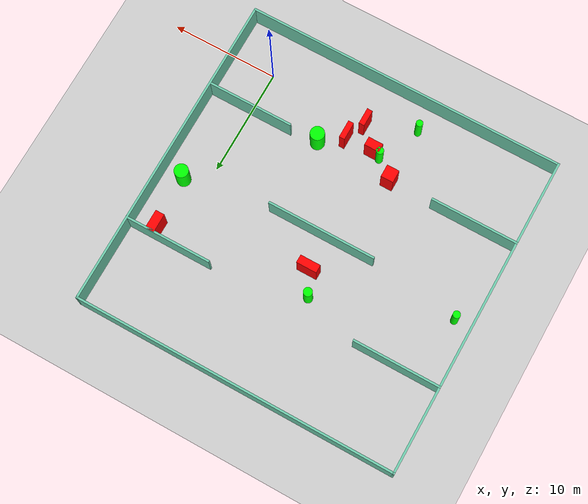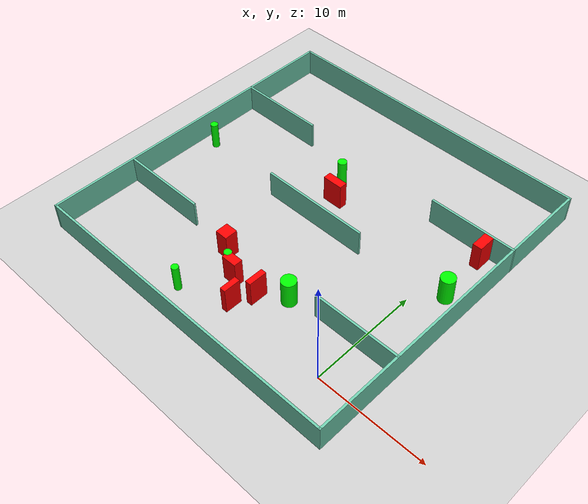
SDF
<sdf version="1.7">
 <world name="default">
  <light name="sun" type="directional">
   <pose>0 0 10 0 -0 0</pose>
   <diffuse>0.8 0.8 0.8 1</diffuse>
   <specular>0.2 0.2 0.2 1</specular>
   <attenuation>
    <range>1000</range>
    <constant>0.9</constant>
    <linear>0.01</linear>
    <quadratic>0.001</quadratic>
   </attenuation>
   <direction>-0.5 0.1 -0.9</direction>
   <spot><inner_angle>0</inner_angle><outer_angle>0</outer_angle><falloff>0</falloff></spot>
  </light>
  <model name="ground_plane">
   <static>1</static>
   <link name="link">
    <collision name="collision">
     <geometry><plane><normal>0 0 1</normal><size>100 100</size></plane></geometry>
     <surface>
      <contact><collide_bitmask>65535</collide_bitmask></contact>
      <friction><ode><mu>100</mu><mu2>50</mu2></ode></friction>
     </surface>
    </collision>
    <visual name="visual">
     <cast_shadows>0</cast_shadows>
     <geometry><plane><normal>0 0 1</normal><size>100 100</size></plane></geometry>
     <material>
      <script><uri>file://media/materials/scripts/gazebo.material</uri><name>Gazebo/Grey</name></script>
     </material>
    </visual>
   </link>
  </model>
  <gravity>0 0 -9.8</gravity>
  <magnetic_field>6e-06 2.3e-05 -4.2e-05</magnetic_field>
  <atmosphere type="adiabatic"/>
  <physics type="ode">
   <max_step_size>0.001</max_step_size>
   <real_time_factor>1</real_time_factor>
   <real_time_update_rate>1000</real_time_update_rate>
  </physics>
  <scene><ambient>0.4 0.4 0.4 1</ambient><background>0.7 0.7 0.7 1</background><shadows>1</shadows></scene>
  <spherical_coordinates>
   <surface_model>EARTH_WGS84</surface_model>
   <latitude_deg>0</latitude_deg>
   <longitude_deg>0</longitude_deg>
   <elevation>0</elevation>
   <heading_deg>0</heading_deg>
  </spherical_coordinates>
  <model name="my_base_walls">
   <link name="Wall_10">
    <collision name="Wall_10_Collision">
     <geometry><box><size>8.2 0.2 2.5</size></box></geometry>
     <pose>0 0 1.25 0 -0 0</pose>
    </collision>
    <visual name="Wall_10_Visual">
     <pose>0 0 1.25 0 -0 0</pose>
     <geometry><box><size>8.2 0.2 2.5</size></box></geometry>
     <material>
      <script><uri>file://media/materials/scripts/gazebo.material</uri><name>Gazebo/Grey</name></script>
      <ambient>0.435294 0.796078 0.67451 1</ambient>
     </material>
     <meta><layer>0</layer></meta>
    </visual>
    <pose>-11 -7 0 0 -0 0</pose>
   </link>
   <link name="Wall_12">
    <collision name="Wall_12_Collision">
     <geometry><box><size>8.2 0.2 2.5</size></box></geometry>
     <pose>0 0 1.25 0 -0 0</pose>
    </collision>
    <visual name="Wall_12_Visual">
     <pose>0 0 1.25 0 -0 0</pose>
     <geometry><box><size>8.2 0.2 2.5</size></box></geometry>
     <material>
      <script><uri>file://media/materials/scripts/gazebo.material</uri><name>Gazebo/Grey</name></script>
      <ambient>0.435294 0.796078 0.67451 1</ambient>
     </material>
     <meta><layer>0</layer></meta>
    </visual>
    <pose>-11 7 0 0 -0 0</pose>
   </link>
   <link name="Wall_14">
    <collision name="Wall_14_Collision">
     <geometry><box><size>8.2 0.2 2.5</size></box></geometry>
     <pose>0 0 1.25 0 -0 0</pose>
    </collision>
    <visual name="Wall_14_Visual">
     <pose>0 0 1.25 0 -0 0</pose>
     <geometry><box><size>8.2 0.2 2.5</size></box></geometry>
     <material>
      <script><uri>file://media/materials/scripts/gazebo.material</uri><name>Gazebo/Grey</name></script>
      <ambient>0.435294 0.796078 0.67451 1</ambient>
     </material>
     <meta><layer>0</layer></meta>
    </visual>
    <pose>11 7 0 0 -0 3.14159</pose>
   </link>
   <link name="Wall_16">
    <collision name="Wall_16_Collision">
     <geometry><box><size>10.2 0.2 2.5</size></box></geometry>
     <pose>0 0 1.25 0 -0 0</pose>
    </collision>
    <visual name="Wall_16_Visual">
     <pose>0 0 1.25 0 -0 0</pose>
     <geometry><box><size>10.2 0.2 2.5</size></box></geometry>
     <material>
      <script><uri>file://media/materials/scripts/gazebo.material</uri><name>Gazebo/Grey</name></script>
      <ambient>0.435294 0.796078 0.67451 1</ambient>
     </material>
     <meta><layer>0</layer></meta>
    </visual>
    <pose>0 0 0 0 -0 3.14159</pose>
   </link>
   <link name="Wall_2">
    <collision name="Wall_2_Collision">
     <geometry><box><size>30.2 0.2 2.5</size></box></geometry>
     <pose>0 0 1.25 0 -0 0</pose>
    </collision>
    <visual name="Wall_2_Visual">
     <pose>0 0 1.25 0 -0 0</pose>
     <geometry><box><size>30.2 0.2 2.5</size></box></geometry>
     <material>
      <script><uri>file://media/materials/scripts/gazebo.material</uri><name>Gazebo/Grey</name></script>
      <ambient>0.435294 0.796078 0.67451 1</ambient>
     </material>
     <meta><layer>0</layer></meta>
    </visual>
    <pose>0 -15 0 0 -0 3.14159</pose>
   </link>
   <link name="Wall_3">
    <collision name="Wall_3_Collision">
     <geometry><box><size>30.2 0.2 2.5</size></box></geometry>
     <pose>0 0 1.25 0 -0 0</pose>
    </collision>
    <visual name="Wall_3_Visual">
     <pose>0 0 1.25 0 -0 0</pose>
     <geometry><box><size>30.2 0.2 2.5</size></box></geometry>
     <material>
      <script><uri>file://media/materials/scripts/gazebo.material</uri><name>Gazebo/Grey</name></script>
      <ambient>0.435294 0.796078 0.67451 1</ambient>
     </material>
     <meta><layer>0</layer></meta>
    </visual>
    <pose>-15 0 0 0 -0 1.5708</pose>
   </link>
   <link name="Wall_4">
    <collision name="Wall_4_Collision">
     <geometry><box><size>30.2 0.2 2.5</size></box></geometry>
     <pose>0 0 1.25 0 -0 0</pose>
    </collision>
    <visual name="Wall_4_Visual">
     <pose>0 0 1.25 0 -0 0</pose>
     <geometry><box><size>30.2 0.2 2.5</size></box></geometry>
     <material>
      <script><uri>file://media/materials/scripts/gazebo.material</uri><name>Gazebo/Grey</name></script>
      <ambient>0.435294 0.796078 0.67451 1</ambient>
     </material>
     <meta><layer>0</layer></meta>
    </visual>
    <pose>0 15 0 0 -0 0</pose>
   </link>
   <link name="Wall_6">
    <collision name="Wall_6_Collision">
     <geometry><box><size>30.2 0.2 2.5</size></box></geometry>
     <pose>0 0 1.25 0 -0 0</pose>
    </collision>
    <visual name="Wall_6_Visual">
     <pose>0 0 1.25 0 -0 0</pose>
     <geometry><box><size>30.2 0.2 2.5</size></box></geometry>
     <material>
      <script><uri>file://media/materials/scripts/gazebo.material</uri><name>Gazebo/Grey</name></script>
      <ambient>0.435294 0.796078 0.67451 1</ambient>
     </material>
     <meta><layer>0</layer></meta>
    </visual>
    <pose>15 0 0 0 -0 1.5708</pose>
   </link>
   <link name="Wall_8">
    <collision name="Wall_8_Collision">
     <geometry><box><size>8.2 0.2 2.5</size></box></geometry>
     <pose>0 0 1.25 0 -0 0</pose>
    </collision>
    <visual name="Wall_8_Visual">
     <pose>0 0 1.25 0 -0 0</pose>
     <geometry><box><size>8.2 0.2 2.5</size></box></geometry>
     <material>
      <script><uri>file://media/materials/scripts/gazebo.material</uri><name>Gazebo/Grey</name></script>
      <ambient>0.435294 0.796078 0.67451 1</ambient>
     </material>
     <meta><layer>0</layer></meta>
    </visual>
    <pose>11 -7 0 0 -0 3.14159</pose>
   </link>
   <static>1</static>
   <pose>-11 11 0 0 -0 0</pose>
  </model>
  <model name="cylinder1">
   <static>1</static>
   <link name="link">
    <inertial>
     <mass>1</mass>
     <inertia><ixx>0.5</ixx><ixy>0</ixy><ixz>0</ixz><iyy>0.5</iyy><iyz>0</iyz><izz>1</izz></inertia>
    </inertial>
    <collision name="collision">
     <geometry><cylinder><radius>0.6593542735226935</radius><length>2.5</length></cylinder></geometry>
    </collision>
    <visual name="visual">
     <geometry><cylinder><radius>0.6593542735226935</radius><length>2.5</length></cylinder></geometry>
     <material>
      <ambient>0 1 0 1</ambient>
      <diffuse>0 1 0 1</diffuse>
      <specular>0.1 0.1 0.1 1</specular>
      <emissive>0 0 0 0</emissive>
     </material>
    </visual>
   </link>
   <pose>-6.502759099282166 3.568875646631364 1.25 0 0 0</pose>
  </model>
  <model name="cylinder2">
   <static>1</static>
   <link name="link">
    <inertial>
     <mass>1</mass>
     <inertia><ixx>0.5</ixx><ixy>0</ixy><ixz>0</ixz><iyy>0.5</iyy><iyz>0</iyz><izz>1</izz></inertia>
    </inertial>
    <collision name="collision">
     <geometry><cylinder><radius>0.3171913453848056</radius><length>2.5</length></cylinder></geometry>
    </collision>
    <visual name="visual">
     <geometry><cylinder><radius>0.3171913453848056</radius><length>2.5</length></cylinder></geometry>
     <material>
      <ambient>0 1 0 1</ambient>
      <diffuse>0 1 0 1</diffuse>
      <specular>0.1 0.1 0.1 1</specular>
      <emissive>0 0 0 0</emissive>
     </material>
    </visual>
   </link>
   <pose>-13.797671626443996 -1.5371315219531412 1.25 0 0 0</pose>
  </model>
  <model name="cylinder3">
   <static>1</static>
   <link name="link">
    <inertial>
     <mass>1</mass>
     <inertia><ixx>0.5</ixx><ixy>0</ixy><ixz>0</ixz><iyy>0.5</iyy><iyz>0</iyz><izz>1</izz></inertia>
    </inertial>
    <collision name="collision">
     <geometry><cylinder><radius>0.41183750465421876</radius><length>2.5</length></cylinder></geometry>
    </collision>
    <visual name="visual">
     <geometry><cylinder><radius>0.41183750465421876</radius><length>2.5</length></cylinder></geometry>
     <material>
      <ambient>0 1 0 1</ambient>
      <diffuse>0 1 0 1</diffuse>
      <specular>0.1 0.1 0.1 1</specular>
      <emissive>0 0 0 0</emissive>
     </material>
    </visual>
   </link>
   <pose>-12.64367810261308 16.26319911270355 1.25 0 0 0</pose>
  </model>
  <model name="cylinder4">
   <static>1</static>
   <link name="link">
    <inertial>
     <mass>1</mass>
     <inertia><ixx>0.5</ixx><ixy>0</ixy><ixz>0</ixz><iyy>0.5</iyy><iyz>0</iyz><izz>1</izz></inertia>
    </inertial>
    <collision name="collision">
     <geometry><cylinder><radius>0.3400312646913637</radius><length>2.5</length></cylinder></geometry>
    </collision>
    <visual name="visual">
     <geometry><cylinder><radius>0.3400312646913637</radius><length>2.5</length></cylinder></geometry>
     <material>
      <ambient>0 1 0 1</ambient>
      <diffuse>0 1 0 1</diffuse>
      <specular>0.1 0.1 0.1 1</specular>
      <emissive>0 0 0 0</emissive>
     </material>
    </visual>
   </link>
   <pose>-11.994864206903443 2.327100531308771 1.25 0 0 0</pose>
  </model>
  <model name="cylinder5">
   <static>1</static>
   <link name="link">
    <inertial>
     <mass>1</mass>
     <inertia><ixx>0.5</ixx><ixy>0</ixy><ixz>0</ixz><iyy>0.5</iyy><iyz>0</iyz><izz>1</izz></inertia>
    </inertial>
    <collision name="collision">
     <geometry><cylinder><radius>0.3344722761754279</radius><length>2.5</length></cylinder></geometry>
    </collision>
    <visual name="visual">
     <geometry><cylinder><radius>0.3344722761754279</radius><length>2.5</length></cylinder></geometry>
     <material>
      <ambient>0 1 0 1</ambient>
      <diffuse>0 1 0 1</diffuse>
      <specular>0.1 0.1 0.1 1</specular>
      <emissive>0 0 0 0</emissive>
     </material>
    </visual>
   </link>
   <pose>-24.41795654195122 11.944656951340882 1.25 0 0 0</pose>
  </model>
  <model name="cylinder6">
   <static>1</static>
   <link name="link">
    <inertial>
     <mass>1</mass>
     <inertia><ixx>0.5</ixx><ixy>0</ixy><ixz>0</ixz><iyy>0.5</iyy><iyz>0</iyz><izz>1</izz></inertia>
    </inertial>
    <collision name="collision">
     <geometry><cylinder><radius>0.6462255036134426</radius><length>2.5</length></cylinder></geometry>
    </collision>
    <visual name="visual">
     <geometry><cylinder><radius>0.6462255036134426</radius><length>2.5</length></cylinder></geometry>
     <material>
      <ambient>0 1 0 1</ambient>
      <diffuse>0 1 0 1</diffuse>
      <specular>0.1 0.1 0.1 1</specular>
      <emissive>0 0 0 0</emissive>
     </material>
    </visual>
   </link>
   <pose>2.0575607893568915 12.206459893604041 1.25 0 0 0</pose>
  </model>
  <model name="box1">
   <static>1</static>
   <link name="link">
    <inertial>
     <mass>1</mass>
     <inertia><ixx>0.083</ixx><ixy>0</ixy><ixz>0</ixz><iyy>0.083</iyy><iyz>0</iyz><izz>0.083</izz></inertia>
    </inertial>
    <collision name="collision">
     <geometry><box><size>1.9004044197506536 0.7495611034572272 2.5</size></box></geometry>
    </collision>
    <visual name="visual">
     <geometry><box><size>1.9004044197506536 0.7495611034572272 2.5</size></box></geometry>
     <material>
      <ambient>1 0 0 1</ambient>
      <diffuse>1 0 0 1</diffuse>
      <specular>0.1 0.1 0.1 1</specular>
      <emissive>0 0 0 0</emissive>
     </material>
    </visual>
    <sensor name="my_contact" type="contact">
     <contact><collision>box_collision</collision><topic>__default_topic__</topic></contact>
    </sensor>
   </link>
   <pose>-11.497243408605843 14.115239822916966 1.25 0 0 0</pose>
  </model>
  <model name="box2">
   <static>1</static>
   <link name="link">
    <inertial>
     <mass>1</mass>
     <inertia><ixx>0.083</ixx><ixy>0</ixy><ixz>0</ixz><iyy>0.083</iyy><iyz>0</iyz><izz>0.083</izz></inertia>
    </inertial>
    <collision name="collision">
     <geometry><box><size>0.517740407617272 1.5353834740456078 2.5</size></box></geometry>
    </collision>
    <visual name="visual">
     <geometry><box><size>0.517740407617272 1.5353834740456078 2.5</size></box></geometry>
     <material>
      <ambient>1 0 0 1</ambient>
      <diffuse>1 0 0 1</diffuse>
      <specular>0.1 0.1 0.1 1</specular>
      <emissive>0 0 0 0</emissive>
     </material>
    </visual>
    <sensor name="my_contact" type="contact">
     <contact><collision>box_collision</collision><topic>__default_topic__</topic></contact>
    </sensor>
   </link>
   <pose>-9.442295696818594 0.21767354008602213 1.25 0 0 0</pose>
  </model>
  <model name="box3">
   <static>1</static>
   <link name="link">
    <inertial>
     <mass>1</mass>
     <inertia><ixx>0.083</ixx><ixy>0</ixy><ixz>0</ixz><iyy>0.083</iyy><iyz>0</iyz><izz>0.083</izz></inertia>
    </inertial>
    <collision name="collision">
     <geometry><box><size>1.1667927467954522 1.181245865788362 2.5</size></box></geometry>
    </collision>
    <visual name="visual">
     <geometry><box><size>1.1667927467954522 1.181245865788362 2.5</size></box></geometry>
     <material>
      <ambient>1 0 0 1</ambient>
      <diffuse>1 0 0 1</diffuse>
      <specular>0.1 0.1 0.1 1</specular>
      <emissive>0 0 0 0</emissive>
     </material>
    </visual>
    <sensor name="my_contact" type="contact">
     <contact><collision>box_collision</collision><topic>__default_topic__</topic></contact>
    </sensor>
   </link>
   <pose>-13.733351188732868 3.7504038690481902 1.25 0 0 0</pose>
  </model>
  <model name="box4">
   <static>1</static>
   <link name="link">
    <inertial>
     <mass>1</mass>
     <inertia><ixx>0.083</ixx><ixy>0</ixy><ixz>0</ixz><iyy>0.083</iyy><iyz>0</iyz><izz>0.083</izz></inertia>
    </inertial>
    <collision name="collision">
     <geometry><box><size>0.8393515583382529 1.755318346435614 2.5</size></box></geometry>
    </collision>
    <visual name="visual">
     <geometry><box><size>0.8393515583382529 1.755318346435614 2.5</size></box></geometry>
     <material>
      <ambient>1 0 0 1</ambient>
      <diffuse>1 0 0 1</diffuse>
      <specular>0.1 0.1 0.1 1</specular>
      <emissive>0 0 0 0</emissive>
     </material>
    </visual>
    <sensor name="my_contact" type="contact">
     <contact><collision>box_collision</collision><topic>__default_topic__</topic></contact>
    </sensor>
   </link>
   <pose>1.7266471081829238 17.16368175115658 1.25 0 0 0</pose>
  </model>
  <model name="box5">
   <static>1</static>
   <link name="link">
    <inertial>
     <mass>1</mass>
     <inertia><ixx>0.083</ixx><ixy>0</ixy><ixz>0</ixz><iyy>0.083</iyy><iyz>0</iyz><izz>0.083</izz></inertia>
    </inertial>
    <collision name="collision">
     <geometry><box><size>1.4102126804843595 0.8074289659444494 2.5</size></box></geometry>
    </collision>
    <visual name="visual">
     <geometry><box><size>1.4102126804843595 0.8074289659444494 2.5</size></box></geometry>
     <material>
      <ambient>1 0 0 1</ambient>
      <diffuse>1 0 0 1</diffuse>
      <specular>0.1 0.1 0.1 1</specular>
      <emissive>0 0 0 0</emissive>
     </material>
    </visual>
    <sensor name="my_contact" type="contact">
     <contact><collision>box_collision</collision><topic>__default_topic__</topic></contact>
    </sensor>
   </link>
   <pose>-11.253701620399701 2.0978177902320496 1.25 0 0 0</pose>
  </model>
  <model name="box6">
   <static>1</static>
   <link name="link">
    <inertial>
     <mass>1</mass>
     <inertia><ixx>0.083</ixx><ixy>0</ixy><ixz>0</ixz><iyy>0.083</iyy><iyz>0</iyz><izz>0.083</izz></inertia>
    </inertial>
    <collision name="collision">
     <geometry><box><size>0.5180104386613017 1.6856156548740413 2.5</size></box></geometry>
    </collision>
    <visual name="visual">
     <geometry><box><size>0.5180104386613017 1.6856156548740413 2.5</size></box></geometry>
     <material>
      <ambient>1 0 0 1</ambient>
      <diffuse>1 0 0 1</diffuse>
      <specular>0.1 0.1 0.1 1</specular>
      <emissive>0 0 0 0</emissive>
     </material>
    </visual>
    <sensor name="my_contact" type="contact">
     <contact><collision>box_collision</collision><topic>__default_topic__</topic></contact>
    </sensor>
   </link>
   <pose>-8.555299525909973 2.0748629778815086 1.25 0 0 0</pose>
  </model>
 </world>
</sdf>
